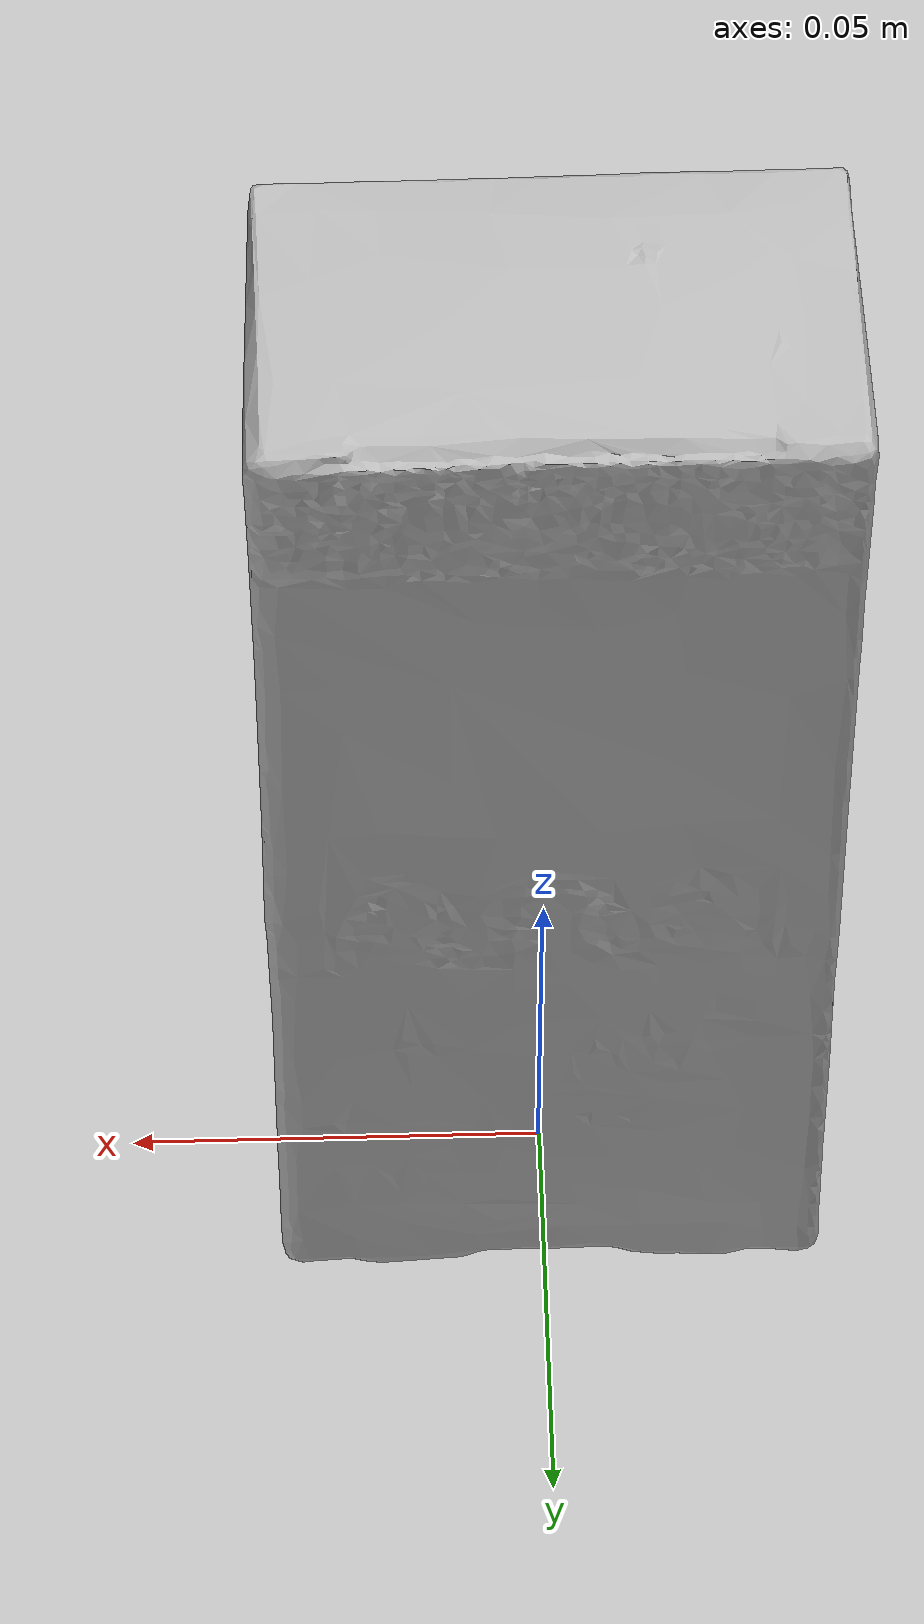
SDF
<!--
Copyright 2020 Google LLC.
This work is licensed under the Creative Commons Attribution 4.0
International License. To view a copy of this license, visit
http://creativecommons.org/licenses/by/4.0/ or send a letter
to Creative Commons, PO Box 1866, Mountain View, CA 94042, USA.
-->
<?xml version="1.0" ?>
<sdf version="1.6">
  <model name="Marc_Anthony_True_Professional_Oil_of_Morocco_Argan_Oil_Treatment">
    <link name="link_0">
      <visual name="visual">
        <geometry>
          <mesh>
            <uri>meshes/model.obj</uri>
          </mesh>
        </geometry>
      </visual>
      <collision name="collision_0">
        <geometry>
          <mesh>
            <uri>meshes/model.obj</uri>
          </mesh>
        </geometry>
      </collision>
    </link>
  </model>
</sdf>
